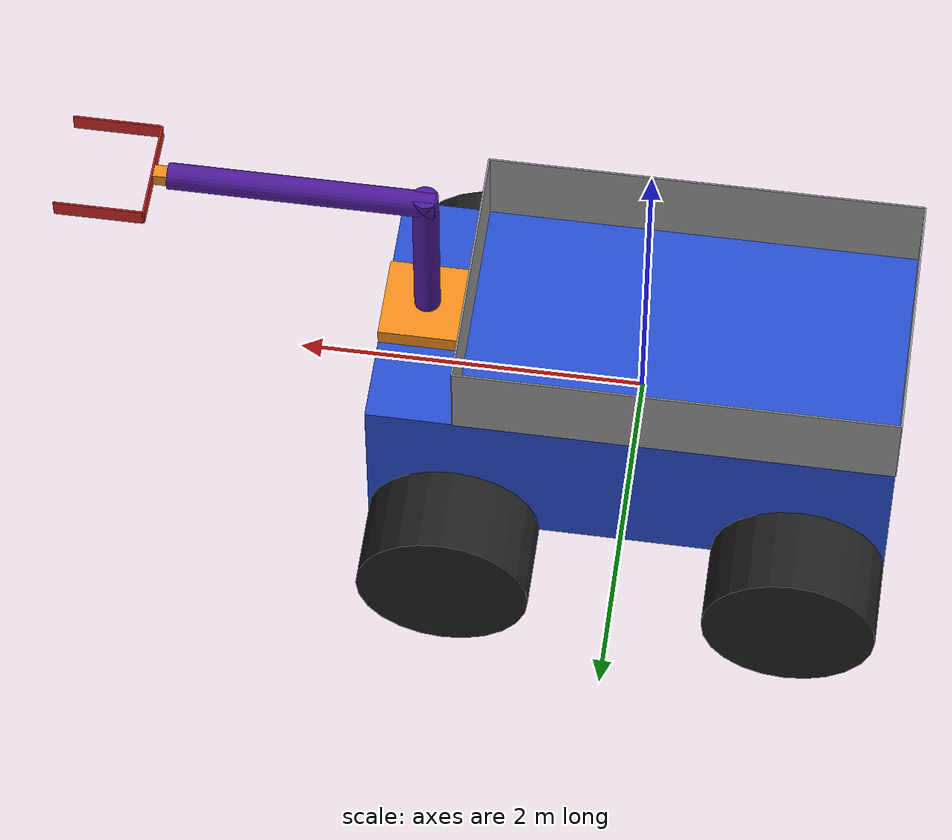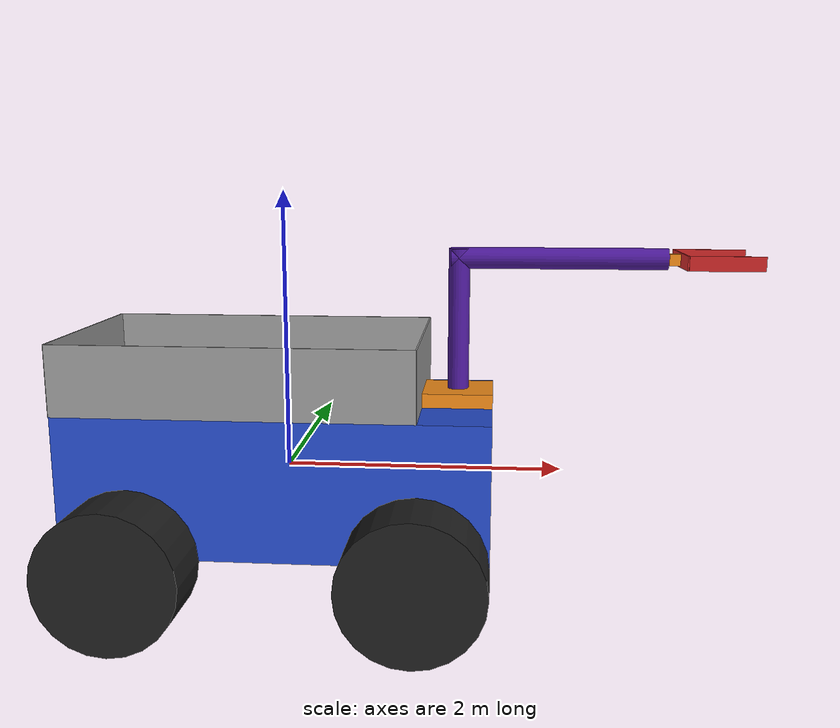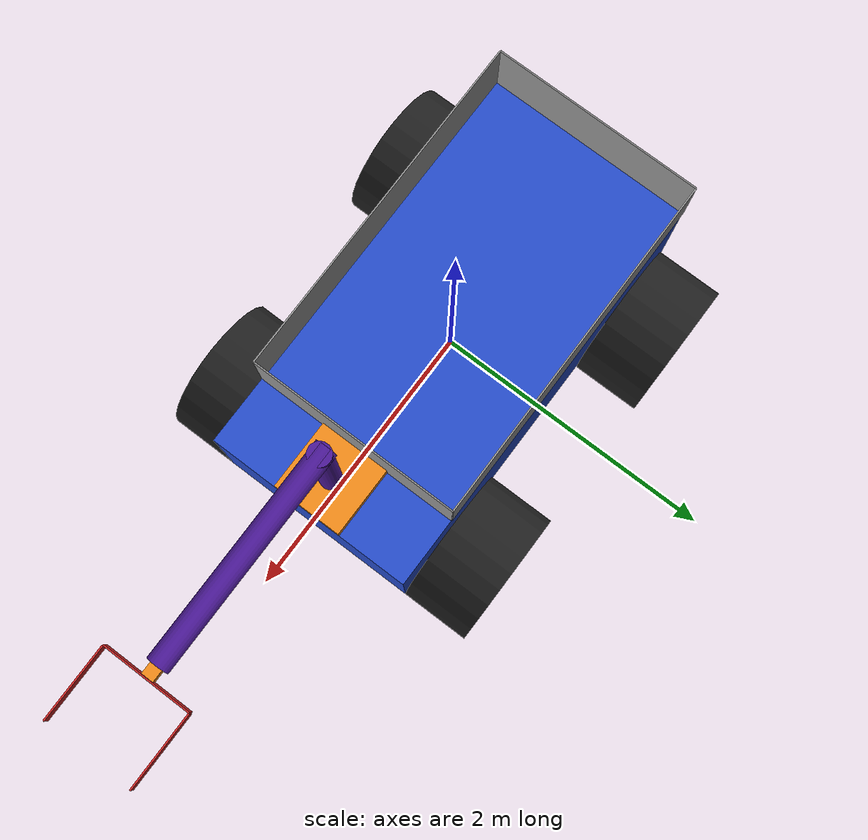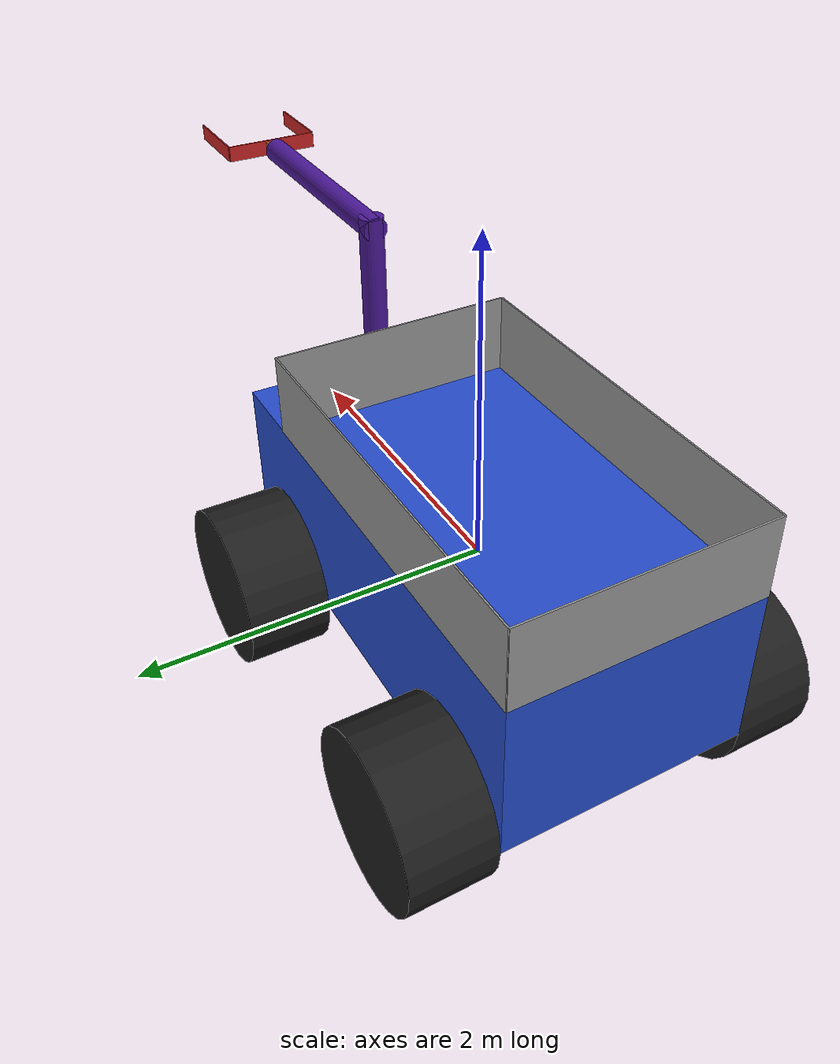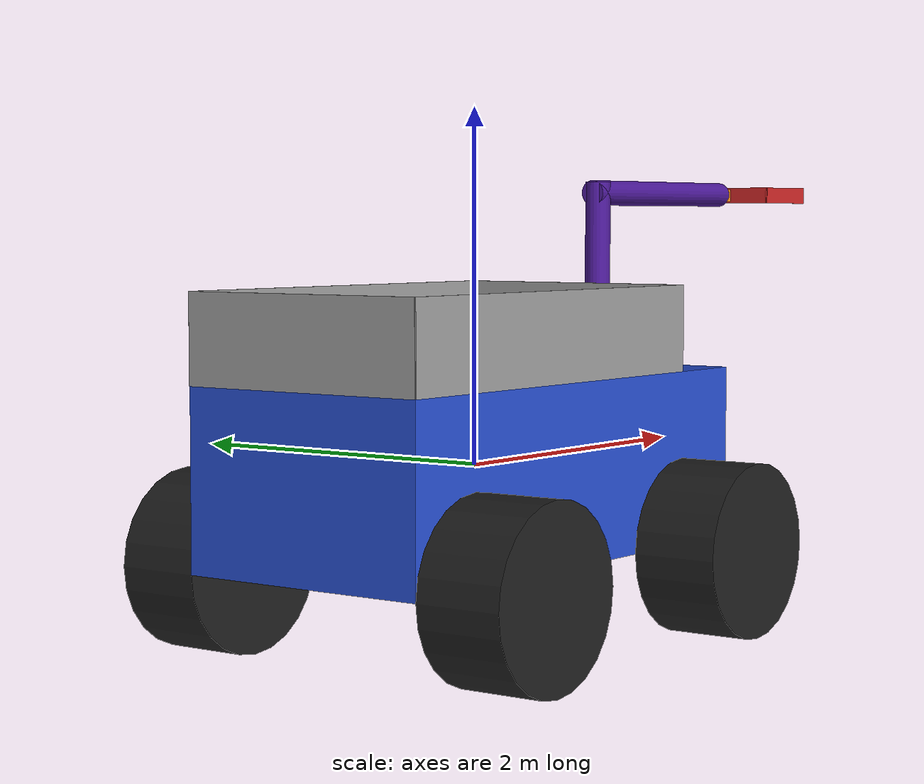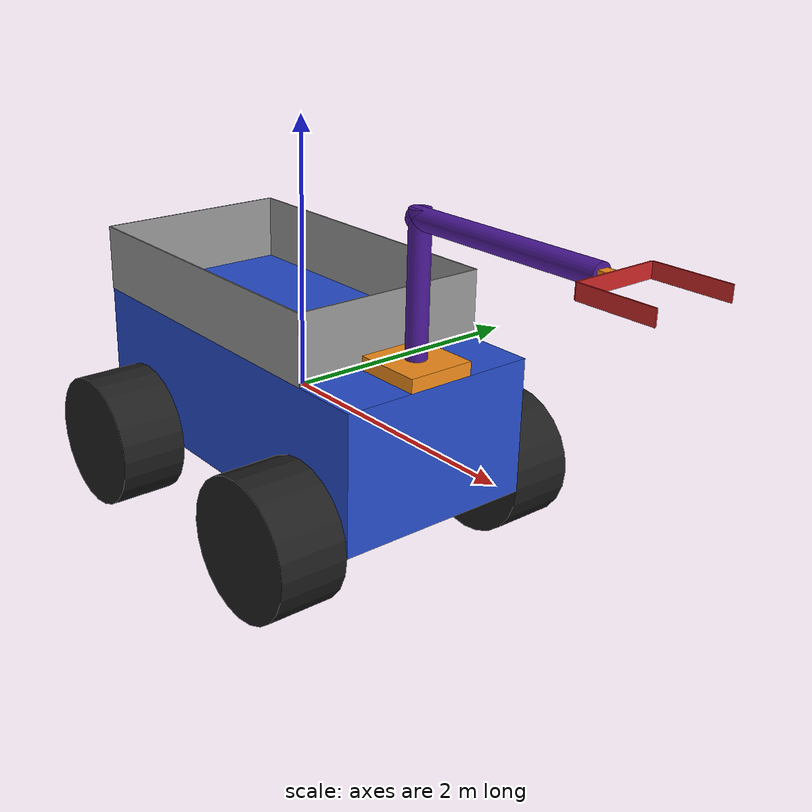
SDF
<?xml version="1.0" ?>
<sdf version='1.7'>
  <model name='rover'>
    <link name='camera_link'>
        <pose>0 0 0 0 0 0</pose>
        <sensor type='camera' name='camera_chasis'>
          <camera>
            <horizontal_fov>1.047</horizontal_fov>
            <image>
              <width>320</width>
              <height>240</height>
            </image>
            <clip>
              <near>0.1</near>
              <far>100</far>
            </clip>
          </camera>
          <always_on>1</always_on>
          <update_rate>30</update_rate>
          <visualize>false</visualize>
          <plugin name="camera_plugin" filename="libgazebo_ros_camera.so">
            <ros>
              <!-- Configuración para ROS 2 -->
              <package>gazebo_ros</package>
              <plugin>gazebo_ros2_camera</plugin>
              <namespace>/chasis/camara</namespace>
            </ros>
            <update_rate>30.0</update_rate>
            <camera_name>camera_chasis</camera_name>
        </plugin>
        </sensor>
    </link>
    <link name='base_link'>
      <inertial>
        <pose>0.107143 0 0.0625 0 -0 0</pose>
        <mass>112</mass>
        <inertia>
          <ixx>31.785</ixx>
          <ixy>-1.91007e-06</ixy>
          <ixz>-5.75</ixz>
          <iyy>103.839</iyy>
          <iyz>0</iyz>
          <izz>111.455</izz>
        </inertia>
      </inertial>
      <collision name='base_link_collision'>
        <pose>0 0 0 1.5708 -0 0</pose>
        <geometry>
          <box>
            <size>3 1 1.5</size>
          </box>
        </geometry>
        <surface>
          <contact>
            <ode/>
          </contact>
          <friction>
            <ode/>
          </friction>
        </surface>
      </collision>
      <collision name='base_link_fixed_joint_lump__base_arm_link_collision_1'>
        <pose>1.25 0 0.55 0 -0 0</pose>
        <geometry>
          <box>
            <size>0.5 0.5 0.1</size>
          </box>
        </geometry>
        <surface>
          <contact>
            <ode/>
          </contact>
          <friction>
            <ode/>
          </friction>
        </surface>
      </collision>
      <collision name='base_link_fixed_joint_lump__box1_link_collision_2'>
        <pose>-0.25 0.75 0.75 0 -0 1.5708</pose>
        <geometry>
          <box>
            <size>0.01 2.5 0.5</size>
          </box>
        </geometry>
        <surface>
          <contact>
            <ode/>
          </contact>
          <friction>
            <ode/>
          </friction>
        </surface>
      </collision>
      <collision name='base_link_fixed_joint_lump__box2_link_collision_3'>
        <pose>-1.5 0 0.75 0 -0 0</pose>
        <geometry>
          <box>
            <size>0.01 1.5 0.5</size>
          </box>
        </geometry>
        <surface>
          <contact>
            <ode/>
          </contact>
          <friction>
            <ode/>
          </friction>
        </surface>
      </collision>
      <collision name='base_link_fixed_joint_lump__box3_link_collision_4'>
        <pose>-0.25 -0.75 0.75 0 -0 1.5708</pose>
        <geometry>
          <box>
            <size>0.01 2.5 0.5</size>
          </box>
        </geometry>
        <surface>
          <contact>
            <ode/>
          </contact>
          <friction>
            <ode/>
          </friction>
        </surface>
      </collision>
      <collision name='base_link_fixed_joint_lump__box4_link_collision_5'>
        <pose>1 0 0.75 0 -0 0</pose>
        <geometry>
          <box>
            <size>0.01 1.5 0.5</size>
          </box>
        </geometry>
        <surface>
          <contact>
            <ode/>
          </contact>
          <friction>
            <ode/>
          </friction>
        </surface>
      </collision>
      <visual name='base_link_visual'>
        <pose>0 0 0 1.5708 -0 0</pose>
        <geometry>
          <box>
            <size>3 1 1.5</size>
          </box>
        </geometry>
        <material>
          <script>
            <name>Gazebo/Blue</name>
            <uri>file://media/materials/scripts/gazebo.material</uri>
          </script>
        </material>
      </visual>
      <visual name='base_link_fixed_joint_lump__base_arm_link_visual_1'>
        <pose>1.25 0 0.55 0 -0 0</pose>
        <geometry>
          <box>
            <size>0.5 0.5 0.1</size>
          </box>
        </geometry>
        <material>
          <script>
            <name>Gazebo/Orange</name>
            <uri>file://media/materials/scripts/gazebo.material</uri>
          </script>
        </material>
      </visual>
      <visual name='base_link_fixed_joint_lump__box1_link_visual_2'>
        <pose>-0.25 0.75 0.75 0 -0 1.5708</pose>
        <geometry>
          <box>
            <size>0.01 2.5 0.5</size>
          </box>
        </geometry>
        <material>
          <script>
            <name>Gazebo/Grey</name>
            <uri>file://media/materials/scripts/gazebo.material</uri>
          </script>
        </material>
      </visual>
      <visual name='base_link_fixed_joint_lump__box2_link_visual_3'>
        <pose>-1.5 0 0.75 0 -0 0</pose>
        <geometry>
          <box>
            <size>0.01 1.5 0.5</size>
          </box>
        </geometry>
        <material>
          <script>
            <name>Gazebo/Grey</name>
            <uri>file://media/materials/scripts/gazebo.material</uri>
          </script>
        </material>
      </visual>
      <visual name='base_link_fixed_joint_lump__box3_link_visual_4'>
        <pose>-0.25 -0.75 0.75 0 -0 1.5708</pose>
        <geometry>
          <box>
            <size>0.01 2.5 0.5</size>
          </box>
        </geometry>
        <material>
          <script>
            <name>Gazebo/Grey</name>
            <uri>file://media/materials/scripts/gazebo.material</uri>
          </script>
        </material>
      </visual>
      <visual name='base_link_fixed_joint_lump__box4_link_visual_5'>
        <pose>1 0 0.75 0 -0 0</pose>
        <geometry>
          <box>
            <size>0.01 1.5 0.5</size>
          </box>
        </geometry>
        <material>
          <script>
            <name>Gazebo/Grey</name>
            <uri>file://media/materials/scripts/gazebo.material</uri>
          </script>
        </material>
      </visual>
    </link>
    <joint name='arm1_joint' type='revolute'>
      <pose relative_to='base_link'>1.25 0 0.60686 -1.5708 0 0</pose>
      <parent>base_link</parent>
      <child>arm1_link</child>
      <axis>
        <xyz>0 0 1</xyz>
        <limit>
          <lower>-0.5</lower>
          <upper>2</upper>
          <effort>1000</effort>
          <velocity>1</velocity>
        </limit>
        <dynamics>
          <damping>0</damping>
          <friction>100.001</friction>
          <spring_reference>0</spring_reference>
          <spring_stiffness>0</spring_stiffness>
        </dynamics>
      </axis>
    </joint>
    <joint name="camera_joint" type="fixed">
      <parent>base_link</parent>
      <child>camera_link</child>
      <pose>0 0 0 0 0 0</pose> <!-- Posición relativa de la rampa con respecto al cubo -->
    </joint>
    <link name='arm1_link'>
      <pose relative_to='arm1_joint'>0 0 0 0 -0 0</pose>
      <inertial>
        <pose>0 -0.49314 0 0 -0 0</pose>
        <mass>10</mass>
        <inertia>
          <ixx>3.3</ixx>
          <ixy>0</ixy>
          <ixz>0</ixz>
          <iyy>0</iyy>
          <iyz>0</iyz>
          <izz>3.3</izz>
        </inertia>
      </inertial>
      <collision name='arm1_link_collision'>
        <pose>0 -0.49314 0 1.5708 -0 0</pose>
        <geometry>
          <cylinder>
            <length>1</length>
            <radius>0.075</radius>
          </cylinder>
        </geometry>
        <surface>
          <contact>
            <ode/>
          </contact>
          <friction>
            <ode/>
          </friction>
        </surface>
      </collision>
      <visual name='arm1_link_visual'>
        <pose>0 -0.49314 0 1.5708 -0 0</pose>
        <geometry>
          <cylinder>
            <length>1</length>
            <radius>0.075</radius>
          </cylinder>
        </geometry>
        <material>
          <script>
            <name>Gazebo/Indigo</name>
            <uri>file://media/materials/scripts/gazebo.material</uri>
          </script>
        </material>
      </visual>
    </link>
    <joint name='arm2_joint' type='revolute'>
      <pose relative_to='arm1_link'>0.01065 -0.92704 0 0 -0 1.5708</pose>
      <parent>arm1_link</parent>
      <child>arm2_link</child>
      <axis>
        <xyz>0 0 1</xyz>
        <limit>
          <lower>-3.14</lower>
          <upper>3.14</upper>
          <effort>1000</effort>
          <velocity>1</velocity>
        </limit>
        <dynamics>
          <damping>0</damping>
          <friction>100.001</friction>
          <spring_reference>0</spring_reference>
          <spring_stiffness>0</spring_stiffness>
        </dynamics>
      </axis>
    </joint>
    <link name='arm2_link'>
      <pose relative_to='arm2_joint'>0 0 0 0 -0 0</pose>
      <inertial>
        <pose>0.002043 -1.10233 -0 0 -0 0</pose>
        <mass>2.1</mass>
        <inertia>
          <ixx>1.0987</ixx>
          <ixy>0.00164195</ixy>
          <ixz>3.22342e-08</ixz>
          <iyy>0.00985797</iyy>
          <iyz>1.11625e-08</iyz>
          <izz>1.08995</izz>
        </inertia>
      </inertial>
      <collision name='arm2_link_collision'>
        <pose>0 -0.68132 0 1.5708 -0 0</pose>
        <geometry>
          <cylinder>
            <length>1.5</length>
            <radius>0.075</radius>
          </cylinder>
        </geometry>
        <surface>
          <contact>
            <ode/>
          </contact>
          <friction>
            <ode/>
          </friction>
        </surface>
      </collision>
      <collision name='arm2_link_fixed_joint_lump__base_gripper_link_collision_1'>
        <pose>0.0039 -1.47259 0 1.5708 -0 0</pose>
        <geometry>
          <box>
            <size>0.08 0.08 0.08</size>
          </box>
        </geometry>
        <surface>
          <contact>
            <ode/>
          </contact>
          <friction>
            <ode/>
          </friction>
        </surface>
      </collision>
      <collision name='arm2_link_fixed_joint_lump__gripper0_link_collision_2'>
        <pose>0.0039 -1.51835 -0 -3.14159 7e-06 -1.5708</pose>
        <geometry>
          <box>
            <size>0.01 0.1 0.6</size>
          </box>
        </geometry>
        <surface>
          <contact>
            <ode/>
          </contact>
          <friction>
            <ode/>
          </friction>
        </surface>
      </collision>
      <visual name='arm2_link_visual'>
        <pose>0 -0.68132 0 1.5708 -0 0</pose>
        <geometry>
          <cylinder>
            <length>1.5</length>
            <radius>0.075</radius>
          </cylinder>
        </geometry>
        <material>
          <script>
            <name>Gazebo/Indigo</name>
            <uri>file://media/materials/scripts/gazebo.material</uri>
          </script>
        </material>
      </visual>
      <visual name='arm2_link_fixed_joint_lump__base_gripper_link_visual_1'>
        <pose>0.0039 -1.47259 0 1.5708 -0 0</pose>
        <geometry>
          <box>
            <size>0.08 0.08 0.08</size>
          </box>
        </geometry>
        <material>
          <script>
            <name>Gazebo/Orange</name>
            <uri>file://media/materials/scripts/gazebo.material</uri>
          </script>
        </material>
      </visual>
      <visual name='arm2_link_fixed_joint_lump__gripper0_link_visual_2'>
        <pose>0.0039 -1.51835 -0 -3.14159 7e-06 -1.5708</pose>
        <geometry>
          <box>
            <size>0.01 0.1 0.6</size>
          </box>
        </geometry>
        <material>
          <script>
            <name>Gazebo/RedGlow</name>
            <uri>file://media/materials/scripts/gazebo.material</uri>
          </script>
        </material>
      </visual>
    </link>
    <joint name='left_gripper_joint' type='prismatic'>
      <pose relative_to='arm2_link'>0.003899 -1.67835 0.299999 -3.14159 7e-06 -1.5708</pose>
      <parent>arm2_link</parent>
      <child>left_gripper_link</child>
      <axis>
        <xyz>0 0 1</xyz>
        <limit>
          <lower>0</lower>
          <upper>0.2</upper>
          <effort>10</effort>
          <velocity>1</velocity>
        </limit>
        <dynamics>
          <spring_reference>0</spring_reference>
          <spring_stiffness>0</spring_stiffness>
        </dynamics>
      </axis>
    </joint>
    <link name='camera_arm_link'>
        <pose relative_to='arm2_link'>0.003899 -1.47835 0 1.5708 0 -1.5708</pose>
        <sensor type='camera' name='camera_arm'>
          <camera>
            <horizontal_fov>1.047</horizontal_fov>
            <image>
              <width>320</width>
              <height>240</height>
            </image>
            <clip>
              <near>0.1</near>
              <far>100</far>
            </clip>
          </camera>
          <always_on>1</always_on>
          <update_rate>30</update_rate>
          <visualize>false</visualize>
          <plugin name="camera_plugin" filename="libgazebo_ros_camera.so">
            <ros>
              <!-- Configuración para ROS 2 -->
              <package>gazebo_ros</package>
              <plugin>gazebo_ros2_camera</plugin>
              <namespace>/arm/camara</namespace>
            </ros>
            <update_rate>30.0</update_rate>
            <camera_name>camera_arm</camera_name>
        </plugin>
        </sensor>
    </link>
    <joint name="arm_cameraarm" type="fixed">
      <parent>arm2_link</parent>
      <child>camera_arm_link</child>
      <pose>0 0 0 0 0 0</pose> <!-- Posición relativa de la rampa con respecto al cubo -->
    </joint>
    <link name='left_gripper_link'>
      <pose relative_to='left_gripper_joint'>0 0 0 0 -0 0</pose>
      <inertial>
        <pose>0.09527 0 0 0 -0 0</pose>
        <mass>0.3</mass>
        <inertia>
          <ixx>0.00025</ixx>
          <ixy>0</ixy>
          <ixz>0</ixz>
          <iyy>0.0062</iyy>
          <iyz>0</iyz>
          <izz>0.0064</izz>
        </inertia>
      </inertial>
      <collision name='left_gripper_link_collision'>
        <pose>0.09527 0 0 0 1.5708 0</pose>
        <geometry>
          <box>
            <size>0.01 0.1 0.5</size>
          </box>
        </geometry>
        <surface>
          <contact>
            <ode/>
          </contact>
          <friction>
            <ode/>
          </friction>
        </surface>
      </collision>
      <visual name='left_gripper_link_visual'>
        <pose>0.09527 0 0 0 1.5708 0</pose>
        <geometry>
          <box>
            <size>0.01 0.1 0.5</size>
          </box>
        </geometry>
        <material>
          <script>
            <name>Gazebo/RedGlow</name>
            <uri>file://media/materials/scripts/gazebo.material</uri>
          </script>
        </material>
      </visual>
    </link>
    <joint name='right_gripper_joint' type='prismatic'>
      <pose relative_to='arm2_link'>0.003901 -1.67835 -0.300001 -3.14159 7e-06 -1.5708</pose>
      <parent>arm2_link</parent>
      <child>right_gripper_link</child>
      <axis>
        <xyz>0 0 1</xyz>
        <limit>
          <lower>-0.2</lower>
          <upper>0</upper>
          <effort>10</effort>
          <velocity>1</velocity>
        </limit>
        <dynamics>
          <spring_reference>0</spring_reference>
          <spring_stiffness>0</spring_stiffness>
        </dynamics>
      </axis>
    </joint>
    <link name='right_gripper_link'>
      <pose relative_to='right_gripper_joint'>0 0 0 0 -0 0</pose>
      <inertial>
        <pose>0.09527 0 0 0 -0 0</pose>
        <mass>0.3</mass>
        <inertia>
          <ixx>0.00025</ixx>
          <ixy>0</ixy>
          <ixz>0</ixz>
          <iyy>0.0062</iyy>
          <iyz>0</iyz>
          <izz>0.0064</izz>
        </inertia>
      </inertial>
      <collision name='right_gripper_link_collision'>
        <pose>0.09527 0 0 0 -1.5708 0</pose>
        <geometry>
          <box>
            <size>0.01 0.1 0.5</size>
          </box>
        </geometry>
        <surface>
          <contact>
            <ode/>
          </contact>
          <friction>
            <ode/>
          </friction>
        </surface>
      </collision>
      <visual name='right_gripper_link_visual'>
        <pose>0.09527 0 0 0 -1.5708 0</pose>
        <geometry>
          <box>
            <size>0.01 0.1 0.5</size>
          </box>
        </geometry>
        <material>
          <script>
            <name>Gazebo/RedGlow</name>
            <uri>file://media/materials/scripts/gazebo.material</uri>
          </script>
        </material>
      </visual>
    </link>
    <joint name='left_rear_wheel_joint' type='revolute'>
      <pose relative_to='base_link'>-1 1 -0.5 -1.5708 0 0</pose>
      <parent>base_link</parent>
      <child>left_rear_wheel_link</child>
      <axis>
        <xyz>0 0 1</xyz>
        <limit>
          <lower>-1e+16</lower>
          <upper>1e+16</upper>
        </limit>
        <dynamics>
          <spring_reference>0</spring_reference>
          <spring_stiffness>0</spring_stiffness>
        </dynamics>
      </axis>
    </joint>
    <link name='left_rear_wheel_link'>
      <pose relative_to='left_rear_wheel_joint'>0 0 0 0 -0 0</pose>
      <inertial>
        <pose>0 0 0 0 -0 0</pose>
        <mass>5</mass>
        <inertia>
          <ixx>0.41</ixx>
          <ixy>0</ixy>
          <ixz>0</ixz>
          <iyy>0.41</iyy>
          <iyz>0</iyz>
          <izz>0.625</izz>
        </inertia>
      </inertial>
      <collision name='left_rear_wheel_link_collision'>
        <pose>0 0 0 -3.14159 0 0</pose>
        <geometry>
          <cylinder>
            <length>0.5</length>
            <radius>0.5</radius>
          </cylinder>
        </geometry>
        <surface>
          <contact>
            <ode/>
          </contact>
          <friction>
            <ode/>
          </friction>
        </surface>
      </collision>
      <visual name='left_rear_wheel_link_visual'>
        <pose>0 0 0 -3.14159 0 0</pose>
        <geometry>
          <cylinder>
            <length>0.5</length>
            <radius>0.5</radius>
          </cylinder>
        </geometry>
        <material>
          <script>
            <name>Gazebo/Black</name>
            <uri>file://media/materials/scripts/gazebo.material</uri>
          </script>
        </material>
      </visual>
    </link>
    <joint name='left_upper_wheel_joint' type='revolute'>
      <pose relative_to='base_link'>1 1 -0.5 -1.5708 0 0</pose>
      <parent>base_link</parent>
      <child>left_upper_wheel_link</child>
      <axis>
        <xyz>0 0 1</xyz>
        <limit>
          <lower>-1e+16</lower>
          <upper>1e+16</upper>
        </limit>
        <dynamics>
          <spring_reference>0</spring_reference>
          <spring_stiffness>0</spring_stiffness>
        </dynamics>
      </axis>
    </joint>
    <link name='left_upper_wheel_link'>
      <pose relative_to='left_upper_wheel_joint'>0 0 0 0 -0 0</pose>
      <inertial>
        <pose>0 0 0 0 -0 0</pose>
        <mass>5</mass>
        <inertia>
          <ixx>0.41</ixx>
          <ixy>0</ixy>
          <ixz>0</ixz>
          <iyy>0.41</iyy>
          <iyz>0</iyz>
          <izz>0.625</izz>
        </inertia>
      </inertial>
      <collision name='left_upper_wheel_link_collision'>
        <pose>0 0 0 -3.14159 0 0</pose>
        <geometry>
          <cylinder>
            <length>0.5</length>
            <radius>0.5</radius>
          </cylinder>
        </geometry>
        <surface>
          <contact>
            <ode/>
          </contact>
          <friction>
            <ode/>
          </friction>
        </surface>
      </collision>
      <visual name='left_upper_wheel_link_visual'>
        <pose>0 0 0 -3.14159 0 0</pose>
        <geometry>
          <cylinder>
            <length>0.5</length>
            <radius>0.5</radius>
          </cylinder>
        </geometry>
        <material>
          <script>
            <name>Gazebo/Black</name>
            <uri>file://media/materials/scripts/gazebo.material</uri>
          </script>
        </material>
      </visual>
    </link>
    <joint name='right_rear_wheel_joint' type='revolute'>
      <pose relative_to='base_link'>-1 -1 -0.5 -1.5708 0 0</pose>
      <parent>base_link</parent>
      <child>right_rear_wheel_link</child>
      <axis>
        <xyz>0 0 1</xyz>
        <limit>
          <lower>-1e+16</lower>
          <upper>1e+16</upper>
        </limit>
        <dynamics>
          <spring_reference>0</spring_reference>
          <spring_stiffness>0</spring_stiffness>
        </dynamics>
      </axis>
    </joint>
    <link name='right_rear_wheel_link'>
      <pose relative_to='right_rear_wheel_joint'>0 0 0 0 -0 0</pose>
      <inertial>
        <pose>0 0 0 0 -0 0</pose>
        <mass>5</mass>
        <inertia>
          <ixx>0.41</ixx>
          <ixy>0</ixy>
          <ixz>0</ixz>
          <iyy>0.41</iyy>
          <iyz>0</iyz>
          <izz>0.625</izz>
        </inertia>
      </inertial>
      <collision name='right_rear_wheel_link_collision'>
        <pose>0 0 0 -3.14159 0 0</pose>
        <geometry>
          <cylinder>
            <length>0.5</length>
            <radius>0.5</radius>
          </cylinder>
        </geometry>
        <surface>
          <contact>
            <ode/>
          </contact>
          <friction>
            <ode/>
          </friction>
        </surface>
      </collision>
      <visual name='right_rear_wheel_link_visual'>
        <pose>0 0 0 -3.14159 0 0</pose>
        <geometry>
          <cylinder>
            <length>0.5</length>
            <radius>0.5</radius>
          </cylinder>
        </geometry>
        <material>
          <script>
            <name>Gazebo/Black</name>
            <uri>file://media/materials/scripts/gazebo.material</uri>
          </script>
        </material>
      </visual>
    </link>
    <joint name='right_upper_wheel_joint' type='revolute'>
      <pose relative_to='base_link'>1 -1 -0.5 -1.5708 0 0</pose>
      <parent>base_link</parent>
      <child>right_upper_wheel_link</child>
      <axis>
        <xyz>0 0 1</xyz>
        <limit>
          <lower>-1e+16</lower>
          <upper>1e+16</upper>
        </limit>
        <dynamics>
          <spring_reference>0</spring_reference>
          <spring_stiffness>0</spring_stiffness>
        </dynamics>
      </axis>
    </joint>
    <link name='right_upper_wheel_link'>
      <pose relative_to='right_upper_wheel_joint'>0 0 0 0 -0 0</pose>
      <inertial>
        <pose>0 0 0 0 -0 0</pose>
        <mass>5</mass>
        <inertia>
          <ixx>0.41</ixx>
          <ixy>0</ixy>
          <ixz>0</ixz>
          <iyy>0.41</iyy>
          <iyz>0</iyz>
          <izz>0.625</izz>
        </inertia>
      </inertial>
      <collision name='right_upper_wheel_link_collision'>
        <pose>0 0 0 -3.14159 0 0</pose>
        <geometry>
          <cylinder>
            <length>0.5</length>
            <radius>0.5</radius>
          </cylinder>
        </geometry>
        <surface>
          <contact>
            <ode/>
          </contact>
          <friction>
            <ode/>
          </friction>
        </surface>
      </collision>
      <visual name='right_upper_wheel_link_visual'>
        <pose>0 0 0 -3.14159 0 0</pose>
        <geometry>
          <cylinder>
            <length>0.5</length>
            <radius>0.5</radius>
          </cylinder>
        </geometry>
        <material>
          <script>
            <name>Gazebo/Black</name>
            <uri>file://media/materials/scripts/gazebo.material</uri>
          </script>
        </material>
      </visual>
    </link>
  </model>
</sdf>
